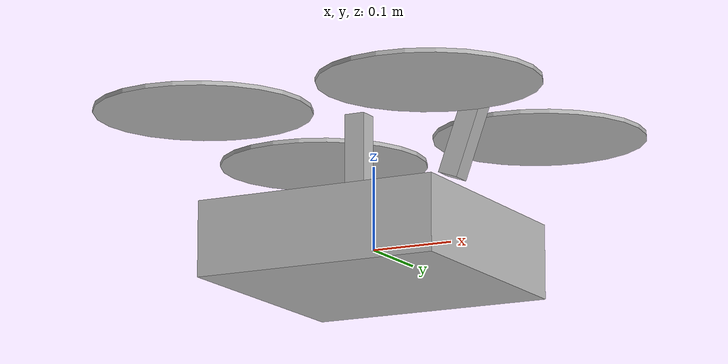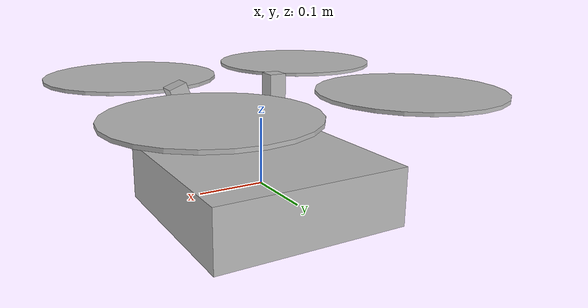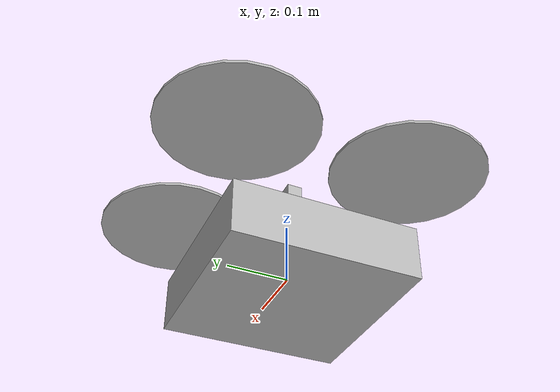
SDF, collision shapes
<?xml version="1.0"?>
<sdf version='1.6'>
  <model name='p450_D435i'>
    <include>
      <uri>model://p450</uri>
    </include>
    <include>
      <uri>model://D435i</uri>
      <pose>0.0 0 0.0 0.0 0 0.0</pose>
    </include>
    <joint name="D435i_joint" type="fixed">
      <child>D435i::camera_link</child>
      <parent>p450::base_link</parent>
      <axis>
        <xyz>0 0 1</xyz>
        <limit>
          <upper>0</upper>
          <lower>0</lower>
        </limit>
      </axis>
    </joint>
  </model>
</sdf>

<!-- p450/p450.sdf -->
<sdf version='1.6'>
  <model name='p450'>
    <!-- p450 body -->
    <link name='base_link'>
      <pose>0 0 0 0 0 0</pose>
      <inertial>
        <pose>0 0 0 0 0 0</pose>
        <mass>1.47</mass>
        <inertia>
          <ixx>0.011</ixx>
          <ixy>0</ixy>
          <ixz>0</ixz>
          <iyy>0.015</iyy>
          <iyz>0</iyz>
          <izz>0.021</izz>
        </inertia>
      </inertial>
      <collision name='base_link_inertia_collision'>
        <pose>0 0 0 0 0 0</pose>
        <geometry>
          <box>
						<size>0.30 0.30 0.09</size>
          </box>
        </geometry>
        <surface>
          <contact>
            <ode>
              <min_depth>0.001</min_depth>
              <max_vel>0</max_vel>
            </ode>
          </contact>
          <friction>
            <ode/>
          </friction>
        </surface>
      </collision>
      <visual name='base_link_inertia_visual'>
        <pose>0 0 0 0 0 0</pose>
        <geometry>
          <mesh>
            <scale>1 1 1</scale>
            <uri>model://p450/meshes/p450.stl</uri>
          </mesh>
        </geometry>
      </visual>
      <gravity>1</gravity>
      <velocity_decay/>
      <self_collide>0</self_collide>
    </link>
    <link name='imu_link'>
      <pose>0 0 0 0 0 0</pose>
      <inertial>
        <pose>0 0 0 0 0 0</pose>
        <mass>0.015</mass>
        <inertia>
          <ixx>1e-05</ixx>
          <ixy>0</ixy>
          <ixz>0</ixz>
          <iyy>1e-05</iyy>
          <iyz>0</iyz>
          <izz>1e-05</izz>
        </inertia>
      </inertial>
    </link>
    <joint name='imu_joint' type='revolute'>
      <child>imu_link</child>
      <parent>base_link</parent>
      <axis>
        <xyz>1 0 0</xyz>
        <limit>
          <lower>0</lower>
          <upper>0</upper>
          <effort>0</effort>
          <velocity>0</velocity>
        </limit>
        <dynamics>
          <spring_reference>0</spring_reference>
          <spring_stiffness>0</spring_stiffness>
        </dynamics>
        <use_parent_model_frame>1</use_parent_model_frame>
      </axis>
    </joint>
    <link name='rotor_0'>
			<pose>0.1465 -0.147 0.151 0 0 0</pose>
      <inertial>
        <pose>0 0 0 0 0 0</pose>
        <mass>0.005</mass>
        <inertia>
          <ixx>9.75e-07</ixx>
          <ixy>0</ixy>
          <ixz>0</ixz>
          <iyy>0.000273104</iyy>
          <iyz>0</iyz>
          <izz>0.000274004</izz>
        </inertia>
      </inertial>
      <collision name='rotor_0_collision'>
        <pose>0 0 0 0 0 0</pose>
        <geometry>
          <cylinder>
            <length>0.005</length>
            <radius>0.128</radius>
          </cylinder>
        </geometry>
        <surface>
          <contact>
            <ode/>
          </contact>
          <friction>
            <ode/>
          </friction>
        </surface>
      </collision>
      <visual name='rotor_0_visual'>
        <pose>0 0 0 0 0 0</pose>
        <geometry>
          <mesh>
            <scale>1 1 1</scale>
            <uri>model://p450/meshes/p450_ccw.stl</uri>
          </mesh>
        </geometry>

      </visual>
      <gravity>1</gravity>
      <velocity_decay/>
      <self_collide>0</self_collide>
    </link>
    <joint name='rotor_0_joint' type='revolute'>
      <child>rotor_0</child>
      <parent>base_link</parent>
      <axis>
        <xyz>0 0 1</xyz>
        <limit>
          <lower>-1e+16</lower>
          <upper>1e+16</upper>
        </limit>
        <dynamics>
          <spring_reference>0</spring_reference>
          <spring_stiffness>0</spring_stiffness>
        </dynamics>
        <use_parent_model_frame>1</use_parent_model_frame>
      </axis>
    </joint>
    <link name='rotor_1'>
			<pose>-0.1465 0.147 0.151 0 0 0</pose>
      <inertial>
        <pose>0 0 0 0 0 0</pose>
        <mass>0.005</mass>
        <inertia>
          <ixx>9.75e-07</ixx>
          <ixy>0</ixy>
          <ixz>0</ixz>
          <iyy>0.000273104</iyy>
          <iyz>0</iyz>
          <izz>0.000274004</izz>
        </inertia>
      </inertial>
      <collision name='rotor_1_collision'>
        <pose>0 0 0 0 0 0</pose>
        <geometry>
          <cylinder>
            <length>0.005</length>
            <radius>0.128</radius>
          </cylinder>
        </geometry>
        <surface>
          <contact>
            <ode/>
          </contact>
          <friction>
            <ode/>
          </friction>
        </surface>
      </collision>
      <visual name='rotor_1_visual'>
        <pose>0 0 0 0 0 0</pose>
        <geometry>
          <mesh>
            <scale>1 1 1</scale>
            <uri>model://p450/meshes/p450_ccw.stl</uri>
          </mesh>
        </geometry>

      </visual>
      <gravity>1</gravity>
      <velocity_decay/>
      <self_collide>0</self_collide>
    </link>
    <joint name='rotor_1_joint' type='revolute'>
      <child>rotor_1</child>
      <parent>base_link</parent>
      <axis>
        <xyz>0 0 1</xyz>
        <limit>
          <lower>-1e+16</lower>
          <upper>1e+16</upper>
        </limit>
        <dynamics>
          <spring_reference>0</spring_reference>
          <spring_stiffness>0</spring_stiffness>
        </dynamics>
        <use_parent_model_frame>1</use_parent_model_frame>
      </axis>
    </joint>
    <link name='rotor_2'>
			<pose>0.1465 0.147 0.151 0 0 0</pose>
      <inertial>
        <pose>0 0 0 0 0 0</pose>
        <mass>0.005</mass>
        <inertia>
          <ixx>9.75e-07</ixx>
          <ixy>0</ixy>
          <ixz>0</ixz>
          <iyy>0.000273104</iyy>
          <iyz>0</iyz>
          <izz>0.000274004</izz>
        </inertia>
      </inertial>
      <collision name='rotor_2_collision'>
        <pose>0 0 0 0 0 0</pose>
        <geometry>
          <cylinder>
            <length>0.005</length>
            <radius>0.128</radius>
          </cylinder>
        </geometry>
        <surface>
          <contact>
            <ode/>
          </contact>
          <friction>
            <ode/>
          </friction>
        </surface>
      </collision>
      <visual name='rotor_2_visual'>
        <pose>0 0 0 0 0 0</pose>
        <geometry>
          <mesh>
            <scale>1 1 1</scale>
            <uri>model://p450/meshes/p450_cw.stl</uri>
          </mesh>
        </geometry>

      </visual>
      <gravity>1</gravity>
      <velocity_decay/>
      <self_collide>0</self_collide>
    </link>
    <joint name='rotor_2_joint' type='revolute'>
      <child>rotor_2</child>
      <parent>base_link</parent>
      <axis>
        <xyz>0 0 1</xyz>
        <limit>
          <lower>-1e+16</lower>
          <upper>1e+16</upper>
        </limit>
        <dynamics>
          <spring_reference>0</spring_reference>
          <spring_stiffness>0</spring_stiffness>
        </dynamics>
        <use_parent_model_frame>1</use_parent_model_frame>
      </axis>
    </joint>
    <link name='rotor_3'>
			<pose>-0.1465 -0.147 0.151 0 0 0</pose>
      <inertial>
        <pose>0 0 0 0 0 0</pose>
        <mass>0.005</mass>
        <inertia>
          <ixx>9.75e-07</ixx>
          <ixy>0</ixy>
          <ixz>0</ixz>
          <iyy>0.000273104</iyy>
          <iyz>0</iyz>
          <izz>0.000274004</izz>
        </inertia>
      </inertial>
      <collision name='rotor_3_collision'>
        <pose>0 0 0 0 0 0</pose>
        <geometry>
          <cylinder>
            <length>0.005</length>
            <radius>0.128</radius>
          </cylinder>
        </geometry>
        <surface>
          <contact>
            <ode/>
          </contact>
          <friction>
            <ode/>
          </friction>
        </surface>
      </collision>
      <visual name='rotor_3_visual'>
        <pose>0 0 0 0 0 0</pose>
        <geometry>
          <mesh>
            <scale>1 1 1</scale>
            <uri>model://p450/meshes/p450_cw.stl</uri>
          </mesh>
        </geometry>

      </visual>
      <gravity>1</gravity>
      <velocity_decay/>
      <self_collide>0</self_collide>
    </link>
    <joint name='rotor_3_joint' type='revolute'>
      <child>rotor_3</child>
      <parent>base_link</parent>
      <axis>
        <xyz>0 0 1</xyz>
        <limit>
          <lower>-1e+16</lower>
          <upper>1e+16</upper>
        </limit>
        <dynamics>
          <spring_reference>0</spring_reference>
          <spring_stiffness>0</spring_stiffness>
        </dynamics>
        <use_parent_model_frame>1</use_parent_model_frame>
      </axis>
    </joint>
    <include>
      <uri>model://gps</uri>
      <pose>0.0 0 0.1 0 0 0</pose>
      <name>gps</name>
    </include>
    <joint name='gps_joint' type='fixed'>
      <child>gps::link</child>
      <parent>base_link</parent>
    </joint>

    <include>
      <uri>model://D435i</uri>
      <pose>0.095 0 0 0 0.35 0</pose>
    </include>
    <joint name="D435i_joint" type="fixed">
      <child>D435i::camera_link</child>
      <parent>base_link</parent>
      <axis>
        <xyz>0 0 1</xyz>
        <limit>
          <upper>0</upper>
          <lower>0</lower>
        </limit>
      </axis>
    </joint>

    <plugin name='rosbag' filename='libgazebo_multirotor_base_plugin.so'>
      <robotNamespace></robotNamespace>
      <linkName>base_link</linkName>
      <rotorVelocitySlowdownSim>10</rotorVelocitySlowdownSim>
    </plugin>
    <plugin name='front_right_motor_model' filename='libgazebo_motor_model.so'>
      <robotNamespace></robotNamespace>
      <jointName>rotor_0_joint</jointName>
      <linkName>rotor_0</linkName>
      <turningDirection>ccw</turningDirection>
      <timeConstantUp>0.0125</timeConstantUp>
      <timeConstantDown>0.025</timeConstantDown>
      <maxRotVelocity>1500</maxRotVelocity>
      <motorConstant>8.54858e-06</motorConstant>
      <momentConstant>0.06</momentConstant>
      <commandSubTopic>/gazebo/command/motor_speed</commandSubTopic>
      <motorNumber>0</motorNumber>
      <rotorDragCoefficient>0.000806428</rotorDragCoefficient>
      <rollingMomentCoefficient>1e-06</rollingMomentCoefficient>
      <motorSpeedPubTopic>/motor_speed/0</motorSpeedPubTopic>
      <rotorVelocitySlowdownSim>10</rotorVelocitySlowdownSim>
    </plugin>
    <plugin name='back_left_motor_model' filename='libgazebo_motor_model.so'>
      <robotNamespace></robotNamespace>
      <jointName>rotor_1_joint</jointName>
      <linkName>rotor_1</linkName>
      <turningDirection>ccw</turningDirection>
      <timeConstantUp>0.0125</timeConstantUp>
      <timeConstantDown>0.025</timeConstantDown>
      <maxRotVelocity>1500</maxRotVelocity>
      <motorConstant>8.54858e-06</motorConstant>
      <momentConstant>0.06</momentConstant>
      <commandSubTopic>/gazebo/command/motor_speed</commandSubTopic>
      <motorNumber>1</motorNumber>
      <rotorDragCoefficient>0.000806428</rotorDragCoefficient>
      <rollingMomentCoefficient>1e-06</rollingMomentCoefficient>
      <motorSpeedPubTopic>/motor_speed/1</motorSpeedPubTopic>
      <rotorVelocitySlowdownSim>10</rotorVelocitySlowdownSim>
    </plugin>
    <plugin name='front_left_motor_model' filename='libgazebo_motor_model.so'>
      <robotNamespace></robotNamespace>
      <jointName>rotor_2_joint</jointName>
      <linkName>rotor_2</linkName>
      <turningDirection>cw</turningDirection>
      <timeConstantUp>0.0125</timeConstantUp>
      <timeConstantDown>0.025</timeConstantDown>
      <maxRotVelocity>1500</maxRotVelocity>
      <motorConstant>8.54858e-06</motorConstant>
      <momentConstant>0.06</momentConstant>
      <commandSubTopic>/gazebo/command/motor_speed</commandSubTopic>
      <motorNumber>2</motorNumber>
      <rotorDragCoefficient>0.000806428</rotorDragCoefficient>
      <rollingMomentCoefficient>1e-06</rollingMomentCoefficient>
      <motorSpeedPubTopic>/motor_speed/2</motorSpeedPubTopic>
      <rotorVelocitySlowdownSim>10</rotorVelocitySlowdownSim>
    </plugin>
    <plugin name='back_right_motor_model' filename='libgazebo_motor_model.so'>
      <robotNamespace></robotNamespace>
      <jointName>rotor_3_joint</jointName>
      <linkName>rotor_3</linkName>
      <turningDirection>cw</turningDirection>
      <timeConstantUp>0.0125</timeConstantUp>
      <timeConstantDown>0.025</timeConstantDown>
      <maxRotVelocity>1500</maxRotVelocity>
      <motorConstant>8.54858e-06</motorConstant>
      <momentConstant>0.06</momentConstant>
      <commandSubTopic>/gazebo/command/motor_speed</commandSubTopic>
      <motorNumber>3</motorNumber>
      <rotorDragCoefficient>0.000806428</rotorDragCoefficient>
      <rollingMomentCoefficient>1e-06</rollingMomentCoefficient>
      <motorSpeedPubTopic>/motor_speed/3</motorSpeedPubTopic>
      <rotorVelocitySlowdownSim>10</rotorVelocitySlowdownSim>
    </plugin>
    <plugin name='groundtruth_plugin' filename='libgazebo_groundtruth_plugin.so'>
      <robotNamespace/>
    </plugin>
    <plugin name='magnetometer_plugin' filename='libgazebo_magnetometer_plugin.so'>
      <robotNamespace/>
      <pubRate>100</pubRate>
      <noiseDensity>0.0004</noiseDensity>
      <randomWalk>6.4e-06</randomWalk>
      <biasCorrelationTime>600</biasCorrelationTime>
      <magTopic>/mag</magTopic>
    </plugin>
    <plugin name='barometer_plugin' filename='libgazebo_barometer_plugin.so'>
      <robotNamespace/>
      <pubRate>50</pubRate>
      <baroTopic>/baro</baroTopic>
    </plugin>
    <plugin name='mavlink_interface' filename='libgazebo_mavlink_interface.so'>
      <robotNamespace/>
      <imuSubTopic>/imu</imuSubTopic>
      <gpsSubTopic>/gps</gpsSubTopic>
      <magSubTopic>/mag</magSubTopic>
      <baroSubTopic>/baro</baroSubTopic>
      <mavlink_addr>INADDR_ANY</mavlink_addr>
      <mavlink_tcp_port>4560</mavlink_tcp_port>
      <serialEnabled>false</serialEnabled>
      <serialDevice>/dev/ttyACM0</serialDevice>
      <baudRate>921600</baudRate>
      <qgc_addr>INADDR_ANY</qgc_addr>
      <qgc_udp_port>14550</qgc_udp_port>
      <hil_mode>false</hil_mode>
      <hil_state_level>false</hil_state_level>
      <enable_lockstep>true</enable_lockstep>
      <use_tcp>true</use_tcp>
      <motorSpeedCommandPubTopic>/gazebo/command/motor_speed</motorSpeedCommandPubTopic>
      <control_channels>
        <channel name='rotor1'>
          <input_index>0</input_index>
          <input_offset>0</input_offset>
          <input_scaling>1200</input_scaling>
          <zero_position_disarmed>0</zero_position_disarmed>
          <zero_position_armed>100</zero_position_armed>
          <joint_control_type>velocity</joint_control_type>
        </channel>
        <channel name='rotor2'>
          <input_index>1</input_index>
          <input_offset>0</input_offset>
          <input_scaling>1200</input_scaling>
          <zero_position_disarmed>0</zero_position_disarmed>
          <zero_position_armed>100</zero_position_armed>
          <joint_control_type>velocity</joint_control_type>
        </channel>
        <channel name='rotor3'>
          <input_index>2</input_index>
          <input_offset>0</input_offset>
          <input_scaling>1200</input_scaling>
          <zero_position_disarmed>0</zero_position_disarmed>
          <zero_position_armed>100</zero_position_armed>
          <joint_control_type>velocity</joint_control_type>
        </channel>
        <channel name='rotor4'>
          <input_index>3</input_index>
          <input_offset>0</input_offset>
          <input_scaling>1200</input_scaling>
          <zero_position_disarmed>0</zero_position_disarmed>
          <zero_position_armed>100</zero_position_armed>
          <joint_control_type>velocity</joint_control_type>
        </channel>
      </control_channels>
    </plugin>
    <static>0</static>
    <plugin name='gazebo_imu_plugin' filename='libgazebo_imu_plugin.so'>
      <robotNamespace></robotNamespace>
      <linkName>imu_link</linkName>
      <imuTopic>/imu</imuTopic>
      <gyroscopeNoiseDensity>0.0003394</gyroscopeNoiseDensity>
      <gyroscopeRandomWalk>3.8785e-05</gyroscopeRandomWalk>
      <gyroscopeBiasCorrelationTime>1000.0</gyroscopeBiasCorrelationTime>
      <gyroscopeTurnOnBiasSigma>0.0087</gyroscopeTurnOnBiasSigma>
      <accelerometerNoiseDensity>0.004</accelerometerNoiseDensity>
      <accelerometerRandomWalk>0.006</accelerometerRandomWalk>
      <accelerometerBiasCorrelationTime>300.0</accelerometerBiasCorrelationTime>
      <accelerometerTurnOnBiasSigma>0.196</accelerometerTurnOnBiasSigma>
    </plugin>

    <plugin name="p3d_base_controller" filename="libgazebo_ros_p3d.so">
      <alwaysOn>true</alwaysOn>
      <updateRate>50.0</updateRate>
      <bodyName>base_link</bodyName>
      <!-- 默认是1号机 -->
      <topicName>/uav1/prometheus/ground_truth</topicName>
      <gaussianNoise>0.00</gaussianNoise>
      <frameName>world</frameName>
      <xyzOffsets>0 0 0</xyzOffsets>
      <rpyOffsets>0 0 0</rpyOffsets>
    </plugin>

  </model>
</sdf>

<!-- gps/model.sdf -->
<sdf version="1.6">
  <model name="gps">
    <link name="link">
      <pose>0 0 0 0 0 0</pose>
      <inertial>
        <pose>0 0 0 0 0 0</pose>
        <mass>0.015</mass>
        <inertia>
          <ixx>1e-05</ixx>
          <ixy>0</ixy>
          <ixz>0</ixz>
          <iyy>1e-05</iyy>
          <iyz>0</iyz>
          <izz>1e-05</izz>
        </inertia>
      </inertial>
      <visual name="visual">
        <geometry>
          <cylinder>
            <radius>0.01</radius>
            <length>0.002</length>
          </cylinder>
        </geometry>
        <material>
          <script>
            <name>Gazebo/Black</name>
            <uri>file://usr/share/gz/gz-sim8/media/gazebo.material</uri>
          </script>
        </material>
      </visual>
      <sensor name="gps" type="gps">
        <pose>0 0 0 0 0 0</pose>
        <update_rate>5.0</update_rate>
        <always_on>true</always_on>
        <visualize>false</visualize>
        <!-- GpsSensor noise currently not used -->
        <plugin name="gps_plugin" filename="libgazebo_gps_plugin.so">
          <robotNamespace></robotNamespace>
          <gpsNoise>true</gpsNoise>
          <gpsXYRandomWalk>2.0</gpsXYRandomWalk>
          <gpsZRandomWalk>4.0</gpsZRandomWalk>
          <gpsXYNoiseDensity>2.0e-4</gpsXYNoiseDensity>
          <gpsZNoiseDensity>4.0e-4</gpsZNoiseDensity>
          <gpsVXYNoiseDensity>0.2</gpsVXYNoiseDensity>
          <gpsVZNoiseDensity>0.4</gpsVZNoiseDensity>
        </plugin>
      </sensor>
    </link>
  </model>
</sdf>

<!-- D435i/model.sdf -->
<sdf version="1.6">
  <model name="D435i">
    <link name="camera_link">
      <pose>-0.02 0 0.12 1.57 0.0 1.57</pose>
      <inertial>
        <mass>0.0564</mass>
        <inertia>
          <ixx>4.1e-05</ixx>
          <ixy>0</ixy>
          <ixz>0</ixz>
          <iyy>5.9e-06</iyy>
          <iyz>0</iyz>
          <izz>5.9e-06</izz>
        </inertia>
      </inertial>
      <self_collide>0</self_collide>
      <kinematic>0</kinematic>
      <gravity>1</gravity>
      <visual name="visual">
        <geometry>
         <mesh>
            <uri>model://D435i/meshes/realsense_d435.stl</uri>
          </mesh>
        </geometry>
      </visual>
      <collision name='collision'>
        <pose>0 0 0 0 0 0</pose>
        <geometry>
          <box>
            <size>0.02505 0.090 0.025</size>
          </box>
        </geometry>
        <surface>
          <friction>
            <ode>
              <mu>1</mu>
              <mu2>1</mu2>
              <fdir1>0 0 0</fdir1>
              <slip1>0</slip1>
              <slip2>0</slip2>
            </ode>
          </friction>
          <bounce>
            <restitution_coefficient>0</restitution_coefficient>
            <threshold>1e+06</threshold>
          </bounce>
          <contact>
            <collide_without_contact>0</collide_without_contact>
            <collide_without_contact_bitmask>1</collide_without_contact_bitmask>
            <collide_bitmask>1</collide_bitmask>
            <ode>
              <soft_cfm>0</soft_cfm>
              <soft_erp>0.2</soft_erp>
              <kp>1e+13</kp>
              <kd>1</kd>
              <max_vel>0.01</max_vel>
              <min_depth>0</min_depth>
            </ode>
            <bullet>
              <split_impulse>1</split_impulse>
              <split_impulse_penetration_threshold>-0.01</split_impulse_penetration_threshold>
              <soft_cfm>0</soft_cfm>
              <soft_erp>0.2</soft_erp>
              <kp>1e+13</kp>
              <kd>1</kd>
            </bullet>
          </contact>
        </surface>
      </collision>
    </link>

    <link name="camera_color_frame">
      <pose>0 0 0.12 0 0 0</pose>
      <inertial>
        <pose frame=''>0 0 0 0 -0 0</pose>
        <mass>0.0015</mass>
        <inertia>
          <ixx>1e-06</ixx>
          <ixy>0</ixy>
          <ixz>0</ixz>
          <iyy>1e-06</iyy>
          <iyz>0</iyz>
          <izz>1e-06</izz>
        </inertia>
      </inertial>
      <sensor name="color" type="camera">
        <camera name="color">
          <horizontal_fov>1.211</horizontal_fov>
          <image>
            <width>640</width>
            <height>480</height>
            <format>RGB_INT8</format>
          </image>
          <clip>
            <near>0.1</near>
            <far>100</far>
          </clip>
          <noise>
            <type>gaussian</type>
            <mean>0.0</mean>
            <stddev>0.007</stddev>
          </noise>
        </camera>
        <always_on>1</always_on>
        <update_rate>30</update_rate>
        <visualize>0</visualize>
      </sensor>
    </link>
    <joint name='camera_color_joint' type='revolute'>
      <child>camera_color_frame</child>
      <parent>camera_link</parent>
      <axis>
        <xyz>1 0 0</xyz>
        <limit>
          <lower>0</lower>
          <upper>0</upper>
          <effort>0</effort>
          <velocity>0</velocity>
        </limit>
        <dynamics>
          <spring_reference>0</spring_reference>
          <spring_stiffness>0</spring_stiffness>
        </dynamics>
        <use_parent_model_frame>1</use_parent_model_frame>
      </axis>
    </joint>

    <link name="camera_ired1_frame">
      <pose>0 0.03 0.12 0 0 0</pose>
      <inertial>
        <pose frame=''>0 0 0 0 -0 0</pose>
        <mass>0.0015</mass>
        <inertia>
          <ixx>1e-06</ixx>
          <ixy>0</ixy>
          <ixz>0</ixz>
          <iyy>1e-06</iyy>
          <iyz>0</iyz>
          <izz>1e-06</izz>
        </inertia>
      </inertial>
      <sensor name="ired1" type="camera">
        <camera name="ired1">
          <horizontal_fov>1.571</horizontal_fov>
          <image>
            <width>640</width>
            <height>480</height>
            <format>L_INT8</format>
          </image>
          <clip>
            <near>0.1</near>
            <far>100</far>
          </clip>
          <noise>
            <type>gaussian</type>
            <mean>0.0</mean>
            <stddev>0.007</stddev>
          </noise>
        </camera>
        <always_on>1</always_on>
        <update_rate>30</update_rate>
        <visualize>0</visualize>
      </sensor>
    </link>
    <joint name='camera_ired1_joint' type='revolute'>
      <child>camera_ired1_frame</child>
      <parent>camera_link</parent>
      <axis>
        <xyz>1 0 0</xyz>
        <limit>
          <lower>0</lower>
          <upper>0</upper>
          <effort>0</effort>
          <velocity>0</velocity>
        </limit>
        <dynamics>
          <spring_reference>0</spring_reference>
          <spring_stiffness>0</spring_stiffness>
        </dynamics>
        <use_parent_model_frame>1</use_parent_model_frame>
      </axis>
    </joint>

    <link name="camera_ired2_frame">
      <pose>0 -0.03 0.12 0 0 0</pose>
      <inertial>
        <pose frame=''>0 0 0 0 -0 0</pose>
        <mass>0.0015</mass>
        <inertia>
          <ixx>1e-06</ixx>
          <ixy>0</ixy>
          <ixz>0</ixz>
          <iyy>1e-06</iyy>
          <iyz>0</iyz>
          <izz>1e-06</izz>
        </inertia>
      </inertial>
      <sensor name="ired2" type="camera">
        <camera name="ired2">
          <horizontal_fov>1.571</horizontal_fov>
          <image>
            <width>640</width>
            <height>480</height>
            <format>L_INT8</format>
          </image>
          <clip>
            <near>0.1</near>
            <far>100</far>
          </clip>
          <noise>
            <type>gaussian</type>
            <mean>0.0</mean>
            <stddev>0.007</stddev>
          </noise>
        </camera>
        <always_on>1</always_on>
        <update_rate>30</update_rate>
        <visualize>0</visualize>
      </sensor>
    </link>
    <joint name='camera_ired2_joint' type='revolute'>
      <child>camera_ired2_frame</child>
      <parent>camera_link</parent>
      <axis>
        <xyz>1 0 0</xyz>
        <limit>
          <lower>0</lower>
          <upper>0</upper>
          <effort>0</effort>
          <velocity>0</velocity>
        </limit>
        <dynamics>
          <spring_reference>0</spring_reference>
          <spring_stiffness>0</spring_stiffness>
        </dynamics>
        <use_parent_model_frame>1</use_parent_model_frame>
      </axis>
    </joint>

    <link name="camera_depth_frame">
      <pose>0 0 0.12 0.0 0.0 0.0</pose>
      <inertial>
        <pose frame=''>0 0 0 0 -0 0</pose>
        <mass>0.0015</mass>
        <inertia>
          <ixx>1e-06</ixx>
          <ixy>0</ixy>
          <ixz>0</ixz>
          <iyy>1e-06</iyy>
          <iyz>0</iyz>
          <izz>1e-06</izz>
        </inertia>
      </inertial>
      <sensor name="depth" type="depth">
        <camera name="depth">
          <horizontal_fov>1.571</horizontal_fov>
          <image>
            <width>640</width>
            <height>480</height>
          </image>
          <clip>
            <near>0.1</near>
            <far>100</far>
          </clip>
          <noise>
            <type>gaussian</type>
            <mean>0.0</mean>
            <stddev>0.007</stddev>
          </noise>
        </camera>
        <always_on>1</always_on>
        <update_rate>30</update_rate>
        <visualize>0</visualize>

      </sensor>
    </link>
    <joint name='camera_depth_joint' type='revolute'>
      <child>camera_depth_frame</child>
      <parent>camera_link</parent>
      <axis>
        <xyz>1 0 0</xyz>
        <limit>
          <lower>0</lower>
          <upper>0</upper>
          <effort>0</effort>
          <velocity>0</velocity>
        </limit>
        <dynamics>
          <spring_reference>0</spring_reference>
          <spring_stiffness>0</spring_stiffness>
        </dynamics>
        <use_parent_model_frame>1</use_parent_model_frame>
      </axis>
    </joint>

  </model>
</sdf>
